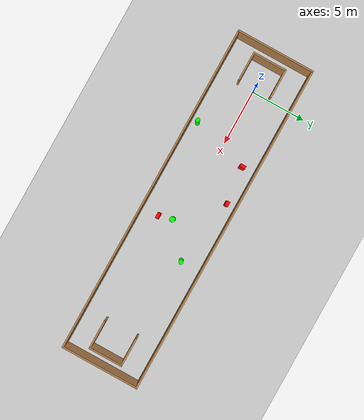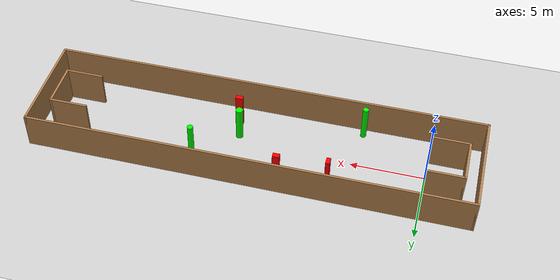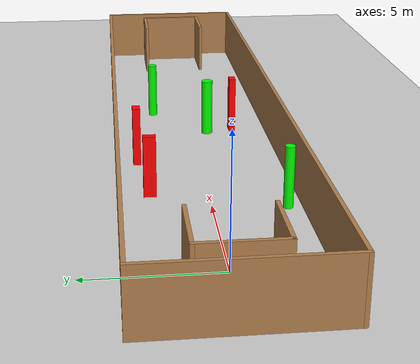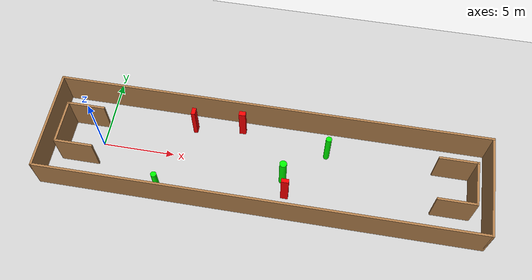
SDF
<sdf version="1.7">
 <world name="default">
  <light name="sun" type="directional">
   <pose>0 0 10 0 -0 0</pose>
   <diffuse>0.8 0.8 0.8 1</diffuse>
   <specular>0.2 0.2 0.2 1</specular>
   <attenuation>
    <range>1000</range>
    <constant>0.9</constant>
    <linear>0.01</linear>
    <quadratic>0.001</quadratic>
   </attenuation>
   <direction>-0.5 0.1 -0.9</direction>
   <spot><inner_angle>0</inner_angle><outer_angle>0</outer_angle><falloff>0</falloff></spot>
  </light>
  <model name="ground_plane">
   <static>1</static>
   <link name="link">
    <collision name="collision">
     <geometry><plane><normal>0 0 1</normal><size>100 100</size></plane></geometry>
     <surface>
      <contact><collide_bitmask>65535</collide_bitmask></contact>
      <friction><ode><mu>100</mu><mu2>50</mu2></ode></friction>
     </surface>
    </collision>
    <visual name="visual">
     <cast_shadows>0</cast_shadows>
     <geometry><plane><normal>0 0 1</normal><size>100 100</size></plane></geometry>
     <material>
      <script><uri>file://media/materials/scripts/gazebo.material</uri><name>Gazebo/Grey</name></script>
     </material>
    </visual>
   </link>
  </model>
  <gravity>0 0 -9.8</gravity>
  <magnetic_field>6e-06 2.3e-05 -4.2e-05</magnetic_field>
  <atmosphere type="adiabatic"/>
  <physics type="ode">
   <max_step_size>0.001</max_step_size>
   <real_time_factor>1</real_time_factor>
   <real_time_update_rate>1000</real_time_update_rate>
  </physics>
  <scene><ambient>0.4 0.4 0.4 1</ambient><background>0.7 0.7 0.7 1</background><shadows>1</shadows></scene>
  <spherical_coordinates>
   <surface_model>EARTH_WGS84</surface_model>
   <latitude_deg>0</latitude_deg>
   <longitude_deg>0</longitude_deg>
   <elevation>0</elevation>
   <heading_deg>0</heading_deg>
  </spherical_coordinates>
  <model name="my_base_walls">
   <link name="Wall_0">
    <collision name="Wall_0_Collision">
     <geometry><box><size>7.15 0.15 2.5</size></box></geometry>
     <pose>0 0 1.25 0 -0 0</pose>
    </collision>
    <visual name="Wall_0_Visual">
     <pose>0 0 1.25 0 -0 0</pose>
     <geometry><box><size>7.15 0.15 2.5</size></box></geometry>
     <material>
      <script><uri>file://media/materials/scripts/gazebo.material</uri><name>Gazebo/Wood</name></script>
      <ambient>1 1 1 1</ambient>
     </material>
     <meta><layer>0</layer></meta>
    </visual>
    <pose>-15 0 0 0 -0 1.5708</pose>
   </link>
   <link name="Wall_10">
    <collision name="Wall_10_Collision">
     <geometry><box><size>2.65 0.15 2.5</size></box></geometry>
     <pose>0 0 1.25 0 -0 0</pose>
    </collision>
    <visual name="Wall_10_Visual">
     <pose>0 0 1.25 0 -0 0</pose>
     <geometry><box><size>2.65 0.15 2.5</size></box></geometry>
     <material>
      <script><uri>file://media/materials/scripts/gazebo.material</uri><name>Gazebo/Wood</name></script>
      <ambient>1 1 1 1</ambient>
     </material>
     <meta><layer>0</layer></meta>
    </visual>
    <pose>-12.75 -1.5 0 0 -0 0</pose>
   </link>
   <link name="Wall_12">
    <collision name="Wall_12_Collision">
     <geometry><box><size>2.65 0.15 2.5</size></box></geometry>
     <pose>0 0 1.25 0 -0 0</pose>
    </collision>
    <visual name="Wall_12_Visual">
     <pose>0 0 1.25 0 -0 0</pose>
     <geometry><box><size>2.65 0.15 2.5</size></box></geometry>
     <material>
      <script><uri>file://media/materials/scripts/gazebo.material</uri><name>Gazebo/Wood</name></script>
      <ambient>1 1 1 1</ambient>
     </material>
     <meta><layer>0</layer></meta>
    </visual>
    <pose>-12.75 1.5 0 0 -0 0</pose>
   </link>
   <link name="Wall_14">
    <collision name="Wall_14_Collision">
     <geometry><box><size>3.15 0.15 2.5</size></box></geometry>
     <pose>0 0 1.25 0 -0 0</pose>
    </collision>
    <visual name="Wall_14_Visual">
     <pose>0 0 1.25 0 -0 0</pose>
     <geometry><box><size>3.15 0.15 2.5</size></box></geometry>
     <material>
      <script><uri>file://media/materials/scripts/gazebo.material</uri><name>Gazebo/Wood</name></script>
      <ambient>1 1 1 1</ambient>
     </material>
     <meta><layer>0</layer></meta>
    </visual>
    <pose>14 0 0 0 -0 -1.5708</pose>
   </link>
   <link name="Wall_15">
    <collision name="Wall_15_Collision">
     <geometry><box><size>2.65 0.15 2.5</size></box></geometry>
     <pose>0 0 1.25 0 -0 0</pose>
    </collision>
    <visual name="Wall_15_Visual">
     <pose>0 0 1.25 0 -0 0</pose>
     <geometry><box><size>2.65 0.15 2.5</size></box></geometry>
     <material>
      <script><uri>file://media/materials/scripts/gazebo.material</uri><name>Gazebo/Wood</name></script>
      <ambient>1 1 1 1</ambient>
     </material>
     <meta><layer>0</layer></meta>
    </visual>
    <pose>12.75 -1.5 0 0 -0 3.14159</pose>
   </link>
   <link name="Wall_17">
    <collision name="Wall_17_Collision">
     <geometry><box><size>2.65 0.15 2.5</size></box></geometry>
     <pose>0 0 1.25 0 -0 0</pose>
    </collision>
    <visual name="Wall_17_Visual">
     <pose>0 0 1.25 0 -0 0</pose>
     <geometry><box><size>2.65 0.15 2.5</size></box></geometry>
     <material>
      <script><uri>file://media/materials/scripts/gazebo.material</uri><name>Gazebo/Wood</name></script>
      <ambient>1 1 1 1</ambient>
     </material>
     <meta><layer>0</layer></meta>
    </visual>
    <pose>12.75 1.5 0 0 -0 3.14159</pose>
   </link>
   <link name="Wall_2">
    <collision name="Wall_2_Collision">
     <geometry><box><size>30.15 0.15 2.5</size></box></geometry>
     <pose>0 0 1.25 0 -0 0</pose>
    </collision>
    <visual name="Wall_2_Visual">
     <pose>0 0 1.25 0 -0 0</pose>
     <geometry><box><size>30.15 0.15 2.5</size></box></geometry>
     <material>
      <script><uri>file://media/materials/scripts/gazebo.material</uri><name>Gazebo/Wood</name></script>
      <ambient>1 1 1 1</ambient>
     </material>
     <meta><layer>0</layer></meta>
    </visual>
    <pose>-0 -3.5 0 0 -0 0</pose>
   </link>
   <link name="Wall_4">
    <collision name="Wall_4_Collision">
     <geometry><box><size>30.15 0.15 2.5</size></box></geometry>
     <pose>0 0 1.25 0 -0 0</pose>
    </collision>
    <visual name="Wall_4_Visual">
     <pose>0 0 1.25 0 -0 0</pose>
     <geometry><box><size>30.15 0.15 2.5</size></box></geometry>
     <material>
      <script><uri>file://media/materials/scripts/gazebo.material</uri><name>Gazebo/Wood</name></script>
      <ambient>1 1 1 1</ambient>
     </material>
     <meta><layer>0</layer></meta>
    </visual>
    <pose>-0 3.5 0 0 -0 0</pose>
   </link>
   <link name="Wall_6">
    <collision name="Wall_6_Collision">
     <geometry><box><size>7.15 0.15 2.5</size></box></geometry>
     <pose>0 0 1.25 0 -0 0</pose>
    </collision>
    <visual name="Wall_6_Visual">
     <pose>0 0 1.25 0 -0 0</pose>
     <geometry><box><size>7.15 0.15 2.5</size></box></geometry>
     <material>
      <script><uri>file://media/materials/scripts/gazebo.material</uri><name>Gazebo/Wood</name></script>
      <ambient>1 1 1 1</ambient>
     </material>
     <meta><layer>0</layer></meta>
    </visual>
    <pose>15 0 0 0 -0 -1.5708</pose>
   </link>
   <link name="Wall_9">
    <collision name="Wall_9_Collision">
     <geometry><box><size>3.15 0.15 2.5</size></box></geometry>
     <pose>0 0 1.25 0 -0 0</pose>
    </collision>
    <visual name="Wall_9_Visual">
     <pose>0 0 1.25 0 -0 0</pose>
     <geometry><box><size>3.15 0.15 2.5</size></box></geometry>
     <material>
      <script><uri>file://media/materials/scripts/gazebo.material</uri><name>Gazebo/Wood</name></script>
      <ambient>1 1 1 1</ambient>
     </material>
     <meta><layer>0</layer></meta>
    </visual>
    <pose>-14 0 0 0 -0 -1.5708</pose>
   </link>
   <static>1</static>
   <pose>11.5 0 0 0 -0 0</pose>
  </model>
  <model name="cylinder1">
   <static>1</static>
   <link name="link">
    <inertial>
     <mass>1</mass>
     <inertia><ixx>0.5</ixx><ixy>0</ixy><ixz>0</ixz><iyy>0.5</iyy><iyz>0</iyz><izz>1</izz></inertia>
    </inertial>
    <collision name="collision">
     <geometry><cylinder><radius>0.19540631794260852</radius><length>2.5</length></cylinder></geometry>
    </collision>
    <visual name="visual">
     <geometry><cylinder><radius>0.19540631794260852</radius><length>2.5</length></cylinder></geometry>
     <material>
      <ambient>0 1 0 1</ambient>
      <diffuse>0 1 0 1</diffuse>
      <specular>0.1 0.1 0.1 1</specular>
      <emissive>0 0 0 0</emissive>
     </material>
    </visual>
   </link>
   <pose>4.632709903505363 -2.876197058069711 1.25 0 0 0</pose>
  </model>
  <model name="cylinder2">
   <static>1</static>
   <link name="link">
    <inertial>
     <mass>1</mass>
     <inertia><ixx>0.5</ixx><ixy>0</ixy><ixz>0</ixz><iyy>0.5</iyy><iyz>0</iyz><izz>1</izz></inertia>
    </inertial>
    <collision name="collision">
     <geometry><cylinder><radius>0.1985707313202223</radius><length>2.5</length></cylinder></geometry>
    </collision>
    <visual name="visual">
     <geometry><cylinder><radius>0.1985707313202223</radius><length>2.5</length></cylinder></geometry>
     <material>
      <ambient>0 1 0 1</ambient>
      <diffuse>0 1 0 1</diffuse>
      <specular>0.1 0.1 0.1 1</specular>
      <emissive>0 0 0 0</emissive>
     </material>
    </visual>
   </link>
   <pose>15.590032312479172 1.6327223660007366 1.25 0 0 0</pose>
  </model>
  <model name="cylinder3">
   <static>1</static>
   <link name="link">
    <inertial>
     <mass>1</mass>
     <inertia><ixx>0.5</ixx><ixy>0</ixy><ixz>0</ixz><iyy>0.5</iyy><iyz>0</iyz><izz>1</izz></inertia>
    </inertial>
    <collision name="collision">
     <geometry><cylinder><radius>0.24884342289630604</radius><length>2.5</length></cylinder></geometry>
    </collision>
    <visual name="visual">
     <geometry><cylinder><radius>0.24884342289630604</radius><length>2.5</length></cylinder></geometry>
     <material>
      <ambient>0 1 0 1</ambient>
      <diffuse>0 1 0 1</diffuse>
      <specular>0.1 0.1 0.1 1</specular>
      <emissive>0 0 0 0</emissive>
     </material>
    </visual>
   </link>
   <pose>12.856060172242652 -0.7164160454412363 1.25 0 0 0</pose>
  </model>
  <model name="box1">
   <static>1</static>
   <link name="link">
    <inertial>
     <mass>1</mass>
     <inertia><ixx>0.083</ixx><ixy>0</ixy><ixz>0</ixz><iyy>0.083</iyy><iyz>0</iyz><izz>0.083</izz></inertia>
    </inertial>
    <collision name="collision">
     <geometry><box><size>0.5126644680764165 0.28164267970530305 2.5</size></box></geometry>
    </collision>
    <visual name="visual">
     <geometry><box><size>0.5126644680764165 0.28164267970530305 2.5</size></box></geometry>
     <material>
      <ambient>1 0 0 1</ambient>
      <diffuse>1 0 0 1</diffuse>
      <specular>0.1 0.1 0.1 1</specular>
      <emissive>0 0 0 0</emissive>
     </material>
    </visual>
    <sensor name="my_contact" type="contact">
     <contact><collision>box_collision</collision><topic>__default_topic__</topic></contact>
    </sensor>
   </link>
   <pose>13.16590254782504 -1.9038256958060695 1.25 0 0 0</pose>
  </model>
  <model name="box2">
   <static>1</static>
   <link name="link">
    <inertial>
     <mass>1</mass>
     <inertia><ixx>0.083</ixx><ixy>0</ixy><ixz>0</ixz><iyy>0.083</iyy><iyz>0</iyz><izz>0.083</izz></inertia>
    </inertial>
    <collision name="collision">
     <geometry><box><size>0.278207099944512 0.5024140405456933 2.5</size></box></geometry>
    </collision>
    <visual name="visual">
     <geometry><box><size>0.278207099944512 0.5024140405456933 2.5</size></box></geometry>
     <material>
      <ambient>1 0 0 1</ambient>
      <diffuse>1 0 0 1</diffuse>
      <specular>0.1 0.1 0.1 1</specular>
      <emissive>0 0 0 0</emissive>
     </material>
    </visual>
    <sensor name="my_contact" type="contact">
     <contact><collision>box_collision</collision><topic>__default_topic__</topic></contact>
    </sensor>
   </link>
   <pose>6.1649904361789165 2.2794739315887096 1.25 0 0 0</pose>
  </model>
  <model name="box3">
   <static>1</static>
   <link name="link">
    <inertial>
     <mass>1</mass>
     <inertia><ixx>0.083</ixx><ixy>0</ixy><ixz>0</ixz><iyy>0.083</iyy><iyz>0</iyz><izz>0.083</izz></inertia>
    </inertial>
    <collision name="collision">
     <geometry><box><size>0.4595503923314384 0.3229422031073136 2.5</size></box></geometry>
    </collision>
    <visual name="visual">
     <geometry><box><size>0.4595503923314384 0.3229422031073136 2.5</size></box></geometry>
     <material>
      <ambient>1 0 0 1</ambient>
      <diffuse>1 0 0 1</diffuse>
      <specular>0.1 0.1 0.1 1</specular>
      <emissive>0 0 0 0</emissive>
     </material>
    </visual>
    <sensor name="my_contact" type="contact">
     <contact><collision>box_collision</collision><topic>__default_topic__</topic></contact>
    </sensor>
   </link>
   <pose>9.496424426663777 2.6522172600294525 1.25 0 0 0</pose>
  </model>
 </world>
</sdf>
